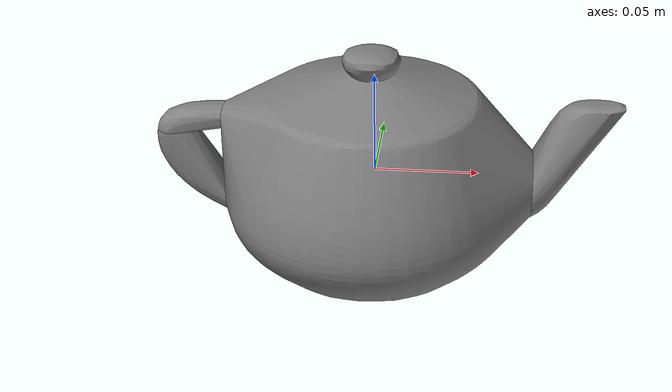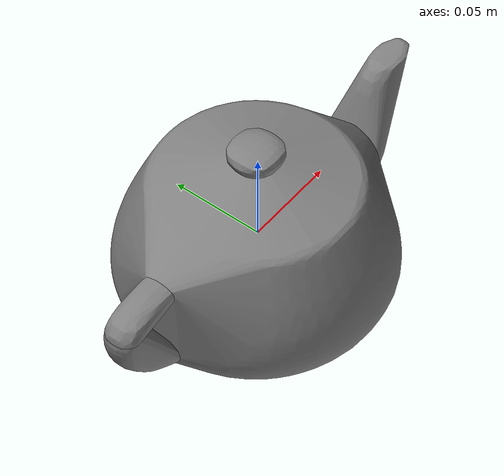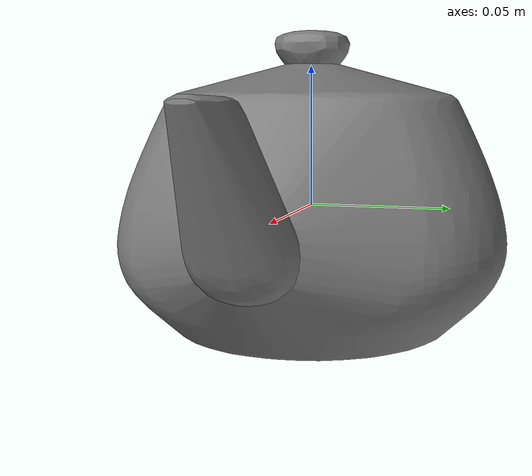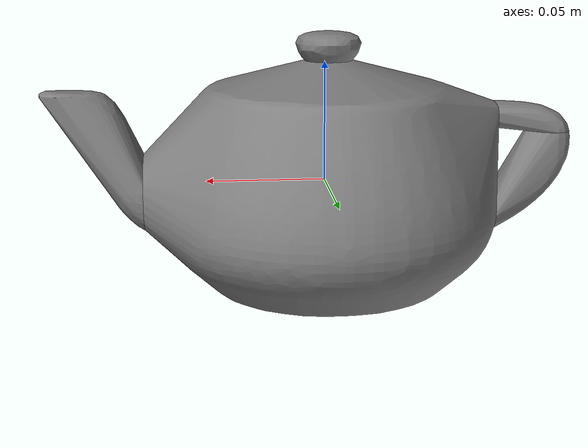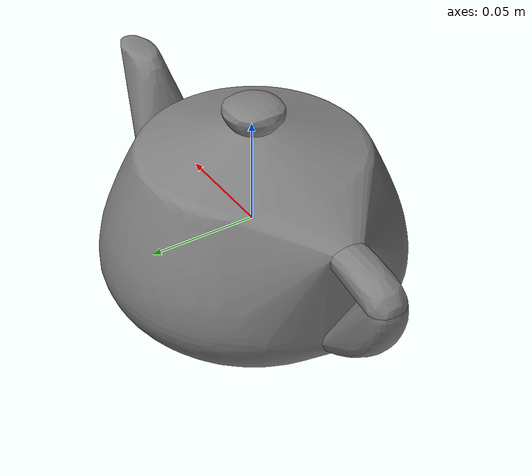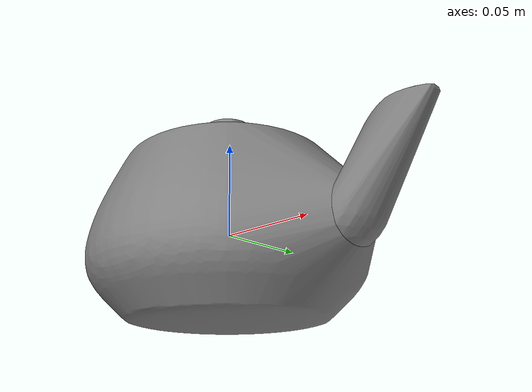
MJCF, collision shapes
<mujoco model="utah_teapot">
  <compiler meshdir="."/>

  <asset>
    <mesh name="utah_teapot" file="utah_teapot.stl"/>
    <mesh name="utah_teapot_collision_hull_000" file="utah_teapot_collision_hull_000.stl"/>
    <mesh name="utah_teapot_collision_hull_001" file="utah_teapot_collision_hull_001.stl"/>
    <mesh name="utah_teapot_collision_hull_002" file="utah_teapot_collision_hull_002.stl"/>
    <mesh name="utah_teapot_collision_hull_003" file="utah_teapot_collision_hull_003.stl"/>
    <mesh name="utah_teapot_collision_hull_004" file="utah_teapot_collision_hull_004.stl"/>
  </asset>

  <worldbody>
    <body name="object">
      <freejoint name="object_joint"/>
      <geom name="object_visual" type="mesh" mesh="utah_teapot"
            contype="0" conaffinity="0" group="2" rgba="0.9 0.9 0.8 1" mass="0"/>
      <geom name="utah_teapot_collision_hull_000_collision" type="mesh" mesh="utah_teapot_collision_hull_000"
            mass="0.0100" condim="6" friction="1.0 0.002 0.002" priority="1"/>
      <geom name="utah_teapot_collision_hull_001_collision" type="mesh" mesh="utah_teapot_collision_hull_001"
            mass="0.0100" condim="6" friction="1.0 0.002 0.002" priority="1"/>
      <geom name="utah_teapot_collision_hull_002_collision" type="mesh" mesh="utah_teapot_collision_hull_002"
            mass="0.0100" condim="6" friction="1.0 0.002 0.002" priority="1"/>
      <geom name="utah_teapot_collision_hull_003_collision" type="mesh" mesh="utah_teapot_collision_hull_003"
            mass="0.0100" condim="6" friction="1.0 0.002 0.002" priority="1"/>
      <geom name="utah_teapot_collision_hull_004_collision" type="mesh" mesh="utah_teapot_collision_hull_004"
            mass="0.0100" condim="6" friction="1.0 0.002 0.002" priority="1"/>
    </body>
  </worldbody>
</mujoco>
